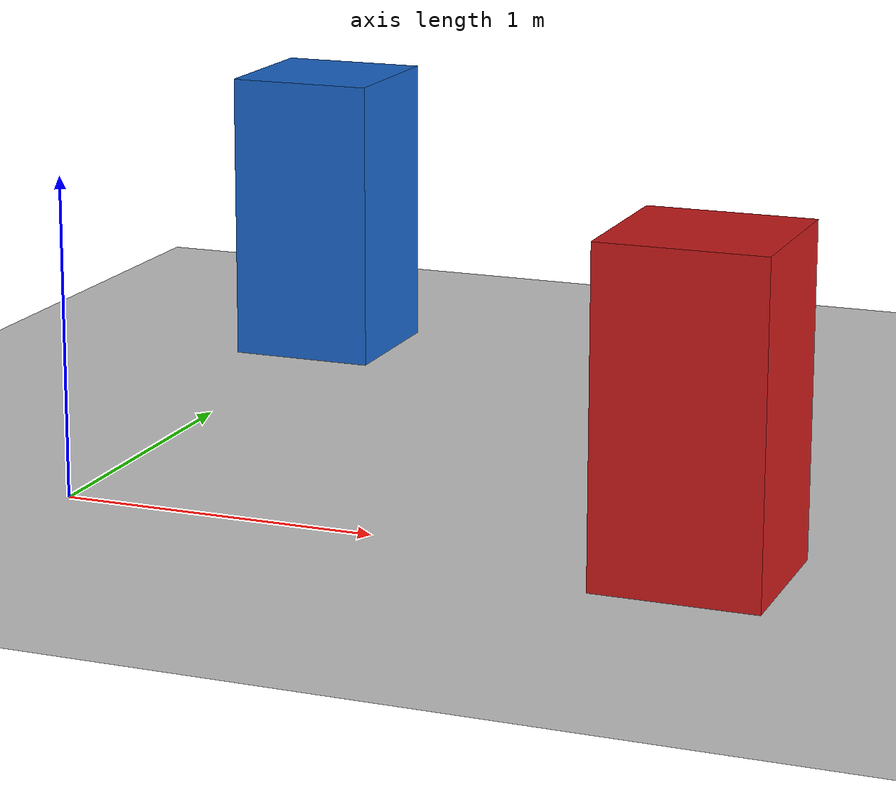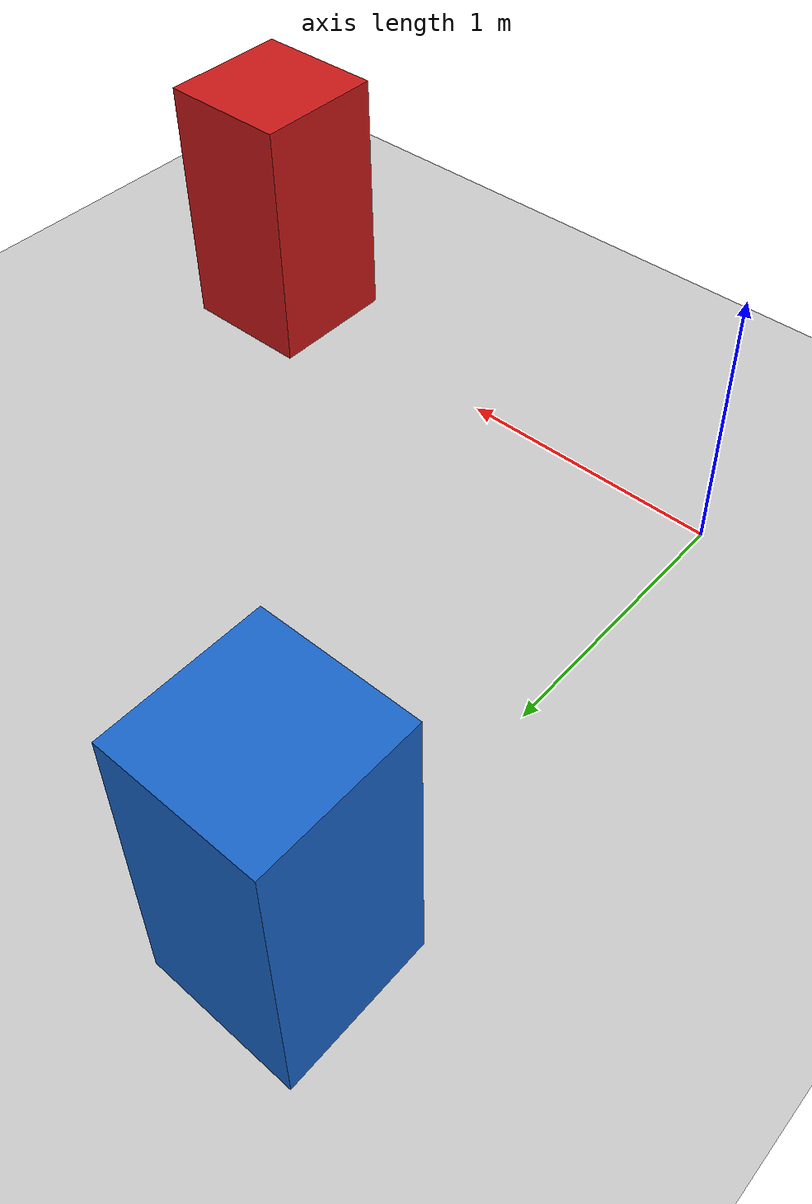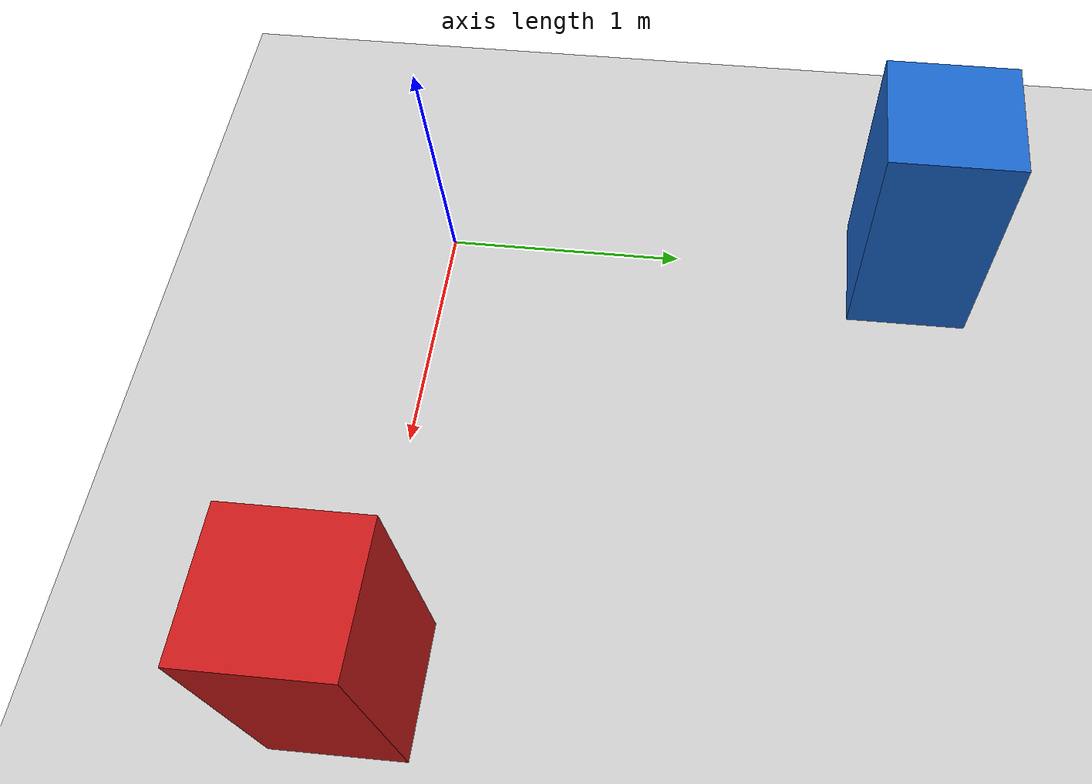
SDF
<?xml version="1.0"?>
<sdf version="1.9">
  <world name="empty">
    <plugin filename="gz-sim-physics-system" name="gz::sim::systems::Physics"/>
    <plugin filename="gz-sim-user-commands-system" name="gz::sim::systems::UserCommands"/>
    <plugin filename="gz-sim-scene-broadcaster-system" name="gz::sim::systems::SceneBroadcaster"/>
    <plugin filename="gz-sim-sensors-system" name="gz::sim::systems::Sensors">
      <render_engine>ogre2</render_engine>
    </plugin>
    <plugin filename="gz-sim-imu-system" name="gz::sim::systems::Imu"/>

    <light name="sun" type="directional">
      <cast_shadows>true</cast_shadows>
      <pose>0 0 10 0 0 0</pose>
      <diffuse>0.8 0.8 0.8 1</diffuse>
      <specular>0.2 0.2 0.2 1</specular>
      <attenuation>
        <range>1000</range>
        <constant>0.9</constant>
        <linear>0.01</linear>
        <quadratic>0.001</quadratic>
      </attenuation>
      <direction>-0.5 0.1 -0.9</direction>
    </light>

    <model name="ground_plane">
      <static>true</static>
      <link name="link">
        <collision name="collision">
          <geometry>
            <plane>
              <normal>0 0 1</normal>
              <size>100 100</size>
            </plane>
          </geometry>
        </collision>
        <visual name="visual">
          <geometry>
            <plane>
              <normal>0 0 1</normal>
              <size>100 100</size>
            </plane>
          </geometry>
          <material>
            <ambient>0.8 0.8 0.8 1</ambient>
            <diffuse>0.8 0.8 0.8 1</diffuse>
          </material>
        </visual>
      </link>
    </model>

    <model name="front_box">
      <static>true</static>
      <pose>2.0 0 0.5 0 0 0</pose>
      <link name="link">
        <collision name="collision">
          <geometry>
            <box>
              <size>0.5 0.5 1.0</size>
            </box>
          </geometry>
        </collision>
        <visual name="visual">
          <geometry>
            <box>
              <size>0.5 0.5 1.0</size>
            </box>
          </geometry>
          <material>
            <ambient>0.8 0.1 0.1 1</ambient>
            <diffuse>0.8 0.1 0.1 1</diffuse>
          </material>
        </visual>
      </link>
    </model>

    <model name="left_box">
      <static>true</static>
      <pose>0.0 2.0 0.5 0 0 0</pose>
      <link name="link">
        <collision name="collision">
          <geometry>
            <box>
              <size>0.5 0.5 1.0</size>
            </box>
          </geometry>
        </collision>
        <visual name="visual">
          <geometry>
            <box>
              <size>0.5 0.5 1.0</size>
            </box>
          </geometry>
          <material>
            <ambient>0.1 0.4 0.8 1</ambient>
            <diffuse>0.1 0.4 0.8 1</diffuse>
          </material>
        </visual>
      </link>
    </model>
  </world>
</sdf>
